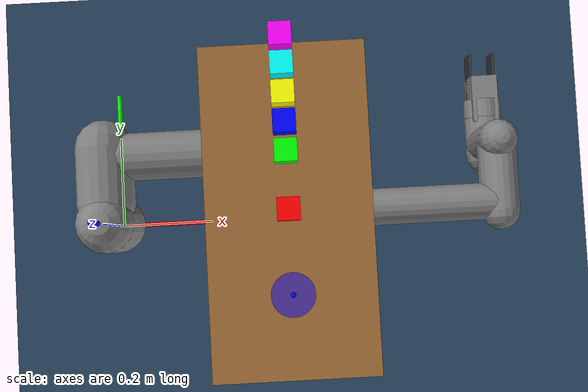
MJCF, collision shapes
<mujoco model="ur5e scene">
  <include file="ur5e.xml" />

  <statistic center="0.3 0 0.4" extent="0.8" />

  <visual>
    <headlight diffuse="0.6 0.6 0.6" ambient="0.1 0.1 0.1" specular="0 0 0" />
    <rgba haze="0.15 0.25 0.35 1" />
    <global azimuth="120" elevation="-20" />
  </visual>

  <asset>
    <texture type="skybox" builtin="gradient" rgb1="0.3 0.5 0.7" rgb2="0 0 0" width="512" height="3072" />
    <texture type="2d" name="groundplane" builtin="checker" mark="edge" rgb1="0.2 0.3 0.4" rgb2="0.1 0.2 0.3" markrgb="0.8 0.8 0.8" width="300" height="300" />
    <material name="groundplane" texture="groundplane" texuniform="true" texrepeat="5 5" reflectance="0.2" />
  </asset>

  <worldbody>
    <light pos="0 0 1.5" dir="0 0 -1" directional="true" />
    <geom name="floor" size="0 0 0.05" type="plane" material="groundplane" />

    <body name="table" pos="0.38 0 0.2">

        <geom type="box" size="0.15 0.3 0.2" rgba="0.6 0.4 0.2 1" contype="1" conaffinity="1" solref="0.01 1" solimp="0.95 0.99 0.001" />
    </body>

    <body name="object" pos="0.38 0 0.45">
        <freejoint name="object_joint" />

        <geom name="object_geom" type="box" size="0.02 0.02 0.02" rgba="1 0 0 1" mass="0.2" friction="1 0.5 0.5" solimp="0.9 0.95 0.001" solref="0.02 1" contype="1" conaffinity="1" />
        <site name="object_body" rgba="0 0 0 0" />
    </body>

    <body name="world_frame" pos="0 0 0">
            <geom name="X" type="cylinder" size="0.005" fromto="0 0 0 0.3 0 0" rgba="1 0 0 1" contype="0" conaffinity="0" />
            <geom name="Y" type="cylinder" size="0.005" fromto="0 0 0 0 0.3 0" rgba="0 1 0 1" contype="0" conaffinity="0" />
            <geom name="Z" type="cylinder" size="0.005" fromto="0 0 0 0 0 0.3" rgba="0 0 1 1" contype="0" conaffinity="0" />
        </body>

        <body name="target" pos="0.38 -0.15 0.401">

	        <geom name="target_point" pos="0 0 0" size="0.04 0.001" type="cylinder" rgba="0 0 1 0.5" contype="0" conaffinity="0" />

            <geom name="target_center" pos="0 0 0" size="0.005" type="sphere" rgba="0 0 1 1" contype="0" conaffinity="0" />
        </body>

  <body name="distractor0" pos="0.38 0.1 0.45"><freejoint name="distractor0_joint" /><geom name="distractor0_geom" type="box" size="0.02 0.02 0.02" rgba="0 1 0 1" mass="0.1" contype="1" conaffinity="1" friction="1 0.5 0.5" /></body><body name="distractor1" pos="0.38 0.15000000000000002 0.45"><freejoint name="distractor1_joint" /><geom name="distractor1_geom" type="box" size="0.02 0.02 0.02" rgba="0 0 1 1" mass="0.1" contype="1" conaffinity="1" friction="1 0.5 0.5" /></body><body name="distractor2" pos="0.38 0.2 0.45"><freejoint name="distractor2_joint" /><geom name="distractor2_geom" type="box" size="0.02 0.02 0.02" rgba="1 1 0 1" mass="0.1" contype="1" conaffinity="1" friction="1 0.5 0.5" /></body><body name="distractor3" pos="0.38 0.25 0.45"><freejoint name="distractor3_joint" /><geom name="distractor3_geom" type="box" size="0.02 0.02 0.02" rgba="0 1 1 1" mass="0.1" contype="1" conaffinity="1" friction="1 0.5 0.5" /></body><body name="distractor4" pos="0.38 0.30000000000000004 0.45"><freejoint name="distractor4_joint" /><geom name="distractor4_geom" type="box" size="0.02 0.02 0.02" rgba="1 0 1 1" mass="0.1" contype="1" conaffinity="1" friction="1 0.5 0.5" /></body></worldbody>
</mujoco>

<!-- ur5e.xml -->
<mujoco model="ur5e">
  <compiler angle="radian" meshdir="assets" autolimits="true"/>

  <option integrator="implicitfast"/>

  <default>
    <default class="ur5e">
      <material specular="0.5" shininess="0.25"/>
      <joint axis="0 1 0" range="-6.28319 6.28319" armature="0.1"/>
      <general gaintype="fixed" biastype="affine" ctrlrange="-6.2831 6.2831" gainprm="2000" biasprm="0 -2000 -400"
        forcerange="-150 150"/>
      <default class="size3">
        <default class="size3_limited">
          <joint range="-3.1415 3.1415"/>
          <general ctrlrange="-3.1415 3.1415"/>
        </default>
      </default>
      <default class="size1">
        <general gainprm="500" biasprm="0 -500 -100" forcerange="-28 28"/>
      </default>
      <default class="visual">
        <geom type="mesh" contype="0" conaffinity="0" group="2"/>
      </default>
      <default class="collision">
        <geom type="capsule" group="3"/>
        <default class="eef_collision">
          <geom type="cylinder"/>
        </default>
      </default>
      <site size="0.001" rgba="0.5 0.5 0.5 0.3" group="4"/>
    </default>
  </default>

  <asset>
    <material class="ur5e" name="black" rgba="0.033 0.033 0.033 1"/>
    <material class="ur5e" name="jointgray" rgba="0.278 0.278 0.278 1"/>
    <material class="ur5e" name="linkgray" rgba="0.82 0.82 0.82 1"/>
    <material class="ur5e" name="urblue" rgba="0.49 0.678 0.8 1"/>

    <mesh file="base_0.obj"/>
    <mesh file="base_1.obj"/>
    <mesh file="shoulder_0.obj"/>
    <mesh file="shoulder_1.obj"/>
    <mesh file="shoulder_2.obj"/>
    <mesh file="upperarm_0.obj"/>
    <mesh file="upperarm_1.obj"/>
    <mesh file="upperarm_2.obj"/>
    <mesh file="upperarm_3.obj"/>
    <mesh file="forearm_0.obj"/>
    <mesh file="forearm_1.obj"/>
    <mesh file="forearm_2.obj"/>
    <mesh file="forearm_3.obj"/>
    <mesh file="wrist1_0.obj"/>
    <mesh file="wrist1_1.obj"/>
    <mesh file="wrist1_2.obj"/>
    <mesh file="wrist2_0.obj"/>
    <mesh file="wrist2_1.obj"/>
    <mesh file="wrist2_2.obj"/>
    <mesh file="wrist3.obj"/>
  </asset>

  <worldbody>
    <light name="spotlight" mode="targetbodycom" target="wrist_2_link" pos="0 -1 2"/>
    <body name="base" quat="1 0 0 0" childclass="ur5e">
      <inertial mass="4.0" pos="0 0 0" diaginertia="0.00443333156 0.00443333156 0.0072"/>
      <geom mesh="base_0" material="black" class="visual"/>
      <geom mesh="base_1" material="jointgray" class="visual"/>
      <body name="shoulder_link" pos="0 0 0.163">
        <inertial mass="3.7" pos="0 0 0" diaginertia="0.0102675 0.0102675 0.00666"/>
        <joint name="shoulder_pan_joint" class="size3" axis="0 0 1"/>
        <geom mesh="shoulder_0" material="urblue" class="visual"/>
        <geom mesh="shoulder_1" material="black" class="visual"/>
        <geom mesh="shoulder_2" material="jointgray" class="visual"/>
        <geom class="collision" size="0.06 0.06" pos="0 0 -0.04"/>
        <body name="upper_arm_link" pos="0 0.138 0" quat="1 0 1 0">
          <inertial mass="8.393" pos="0 0 0.2125" diaginertia="0.133886 0.133886 0.0151074"/>
          <joint name="shoulder_lift_joint" class="size3"/>
          <geom mesh="upperarm_0" material="linkgray" class="visual"/>
          <geom mesh="upperarm_1" material="black" class="visual"/>
          <geom mesh="upperarm_2" material="jointgray" class="visual"/>
          <geom mesh="upperarm_3" material="urblue" class="visual"/>
          <geom class="collision" pos="0 -0.04 0" quat="1 1 0 0" size="0.06 0.06"/>
          <geom class="collision" size="0.05 0.2" pos="0 0 0.2"/>
          <body name="forearm_link" pos="0 -0.131 0.425">
            <inertial mass="2.275" pos="0 0 0.196" diaginertia="0.0311796 0.0311796 0.004095"/>
            <joint name="elbow_joint" class="size3_limited"/>
            <geom mesh="forearm_0" material="urblue" class="visual"/>
            <geom mesh="forearm_1" material="linkgray" class="visual"/>
            <geom mesh="forearm_2" material="black" class="visual"/>
            <geom mesh="forearm_3" material="jointgray" class="visual"/>
            <geom class="collision" pos="0 0.08 0" quat="1 1 0 0" size="0.055 0.06"/>
            <geom class="collision" size="0.038 0.19" pos="0 0 0.2"/>
            <body name="wrist_1_link" pos="0 0 0.392" quat="1 0 1 0">
              <inertial mass="1.219" pos="0 0.127 0" diaginertia="0.0025599 0.0025599 0.0021942"/>
              <joint name="wrist_1_joint" class="size1"/>
              <geom mesh="wrist1_0" material="black" class="visual"/>
              <geom mesh="wrist1_1" material="urblue" class="visual"/>
              <geom mesh="wrist1_2" material="jointgray" class="visual"/>
              <geom class="collision" pos="0 0.05 0" quat="1 1 0 0" size="0.04 0.07"/>
              <body name="wrist_2_link" pos="0 0.127 0">
                <inertial mass="1.219" pos="0 0 0.1" diaginertia="0.0025599 0.0025599 0.0021942"/>
                <joint name="wrist_2_joint" axis="0 0 1" class="size1"/>
                <geom mesh="wrist2_0" material="black" class="visual"/>
                <geom mesh="wrist2_1" material="urblue" class="visual"/>
                <geom mesh="wrist2_2" material="jointgray" class="visual"/>
                <geom class="collision" size="0.04 0.06" pos="0 0 0.04"/>
                <geom class="collision" pos="0 0.02 0.1" quat="1 1 0 0" size="0.04 0.04"/>
                <body name="wrist_3_link" pos="0 0 0.1">
                  <inertial mass="0.1889" pos="0 0.0771683 0" quat="1 0 0 1"
                    diaginertia="0.000132134 9.90863e-05 9.90863e-05"/>
                  <joint name="wrist_3_joint" class="size1"/>
                  <geom material="linkgray" mesh="wrist3" class="visual"/>
                  <geom class="eef_collision" pos="0 0.08 0" quat="1 1 0 0" size="0.04 0.02"/>
                  <!-- Simple Gripper (Pointing Outwards) -->
                  <body name="tool0" pos="0 0.1 0" quat="0 0 1 0">
                    <geom name="gripper_base" type="box" size="0.028 0.05 0.035" pos="0 0 0" rgba="0.5 0.5 0.5 1"/>

                    <!-- Right Finger -->
                    <body name="right_finger_link" pos="0.025 0 0">
                        <joint name="finger_joint1" type="slide" axis="1 0 0" range="-0.01 0.04"/>
                        <geom name="right_finger" type="box" size="0.003 0.05 0.02" pos="0 0.05 0" rgba="0.2 0.2 0.2 1"
                              friction="2 0.1 0.1" solimp="0.9 0.95 0.001" solref="0.02 1"
                              contype="1" conaffinity="1"/>
                    </body>

                    <!-- Left Finger -->
                    <body name="left_finger_link" pos="-0.025 0 0">
                        <joint name="finger_joint2" type="slide" axis="-1 0 0" range="-0.01 0.04"/>
                        <geom name="left_finger" type="box" size="0.003 0.05 0.02" pos="0 0.05 0" rgba="0.2 0.2 0.2 1"
                              friction="2 0.1 0.1" solimp="0.9 0.95 0.001" solref="0.02 1"
                              contype="1" conaffinity="1"/>
                    </body>

                    <site name="attachment_site" pos="0 0.05 0"/>
                  </body>
                </body>
              </body>
            </body>
          </body>
        </body>
      </body>
    </body>
  </worldbody>

  <actuator>
    <general class="size3" name="shoulder_pan" joint="shoulder_pan_joint"/>
    <general class="size3" name="shoulder_lift" joint="shoulder_lift_joint"/>
    <general class="size3_limited" name="elbow" joint="elbow_joint"/>
    <general class="size1" name="wrist_1" joint="wrist_1_joint"/>
    <general class="size1" name="wrist_2" joint="wrist_2_joint"/>
    <general class="size1" name="wrist_3" joint="wrist_3_joint"/>
    <!-- Increased KP from 500 to 2000 for stronger grip -->
    <position name="finger_1" joint="finger_joint1" kp="2000" kv="50" ctrlrange="-0.01 0.04" forcerange="-50 50"/>
    <position name="finger_2" joint="finger_joint2" kp="2000" kv="50" ctrlrange="-0.01 0.04" forcerange="-50 50"/>
  </actuator>

  <keyframe>
    <key name="home" qpos="-1.5708 -1.5708 1.5708 -1.5708 -1.5708 0" ctrl="-1.5708 -1.5708 1.5708 -1.5708 -1.5708 0"/>
  </keyframe>
</mujoco>
